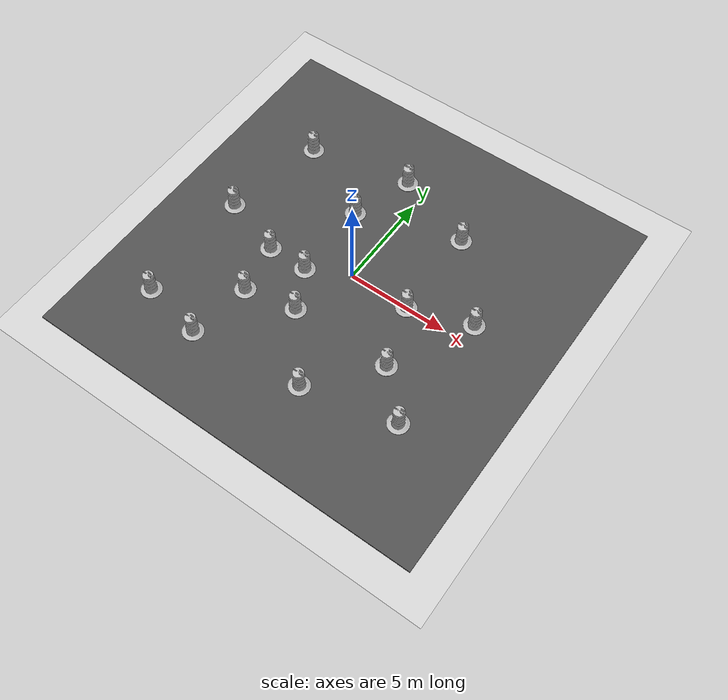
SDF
<sdf version="1.4">
 <world name="default">
  <light name="sun" type="directional">
   <pose>0 0 10 0 -0 0</pose>
   <diffuse>0.8 0.8 0.8 1</diffuse>
   <specular>0.2 0.2 0.2 1</specular>
   <attenuation>
    <range>1000</range>
    <constant>0.9</constant>
    <linear>0.01</linear>
    <quadratic>0.001</quadratic>
   </attenuation>
   <direction>-0.5 0.1 -0.9</direction>
  </light>
  <model name="ground_plane">
   <static>1</static>
   <link name="link">
    <collision name="collision">
     <geometry><plane><normal>0 0 1</normal><size>100 100</size></plane></geometry>
     <surface><friction><ode><mu>100</mu><mu2>50</mu2></ode></friction></surface>
    </collision>
    <visual name="visual">
     <cast_shadows>0</cast_shadows>
     <geometry><plane><normal>0 0 1</normal><size>100 100</size></plane></geometry>
     <material>
      <script><uri>file://media/materials/scripts/gazebo.material</uri><name>Gazebo/Grey</name></script>
     </material>
    </visual>
    <velocity_decay><linear>0</linear><angular>0</angular></velocity_decay>
   </link>
  </model>
  <physics type="ode">
   <max_step_size>0.001</max_step_size>
   <real_time_factor>1</real_time_factor>
   <real_time_update_rate>1000</real_time_update_rate>
   <gravity>0 0 -9.8</gravity>
  </physics>
  <scene><ambient>0.4 0.4 0.4 1</ambient><background>0.7 0.7 0.7 1</background><shadows>1</shadows></scene>
  <spherical_coordinates>
   <surface_model>EARTH_WGS84</surface_model>
   <latitude_deg>0</latitude_deg>
   <longitude_deg>0</longitude_deg>
   <elevation>0</elevation>
   <heading_deg>0</heading_deg>
  </spherical_coordinates>
  <model name="asphalt_plane">
   <static>1</static>
   <link name="link">
    <collision name="collision"><geometry><box><size>20 20 0.1</size></box></geometry></collision>
    <visual name="visual">
     <cast_shadows>0</cast_shadows>
     <geometry><box><size>20 20 0.1</size></box></geometry>
     <material>
      <script>
       <uri>model://asphalt_plane/materials/scripts</uri>
       <uri>model://asphalt_plane/materials/textures</uri>
       <name>vrc/asphalt</name>
      </script>
     </material>
    </visual>
    <velocity_decay><linear>0</linear><angular>0</angular></velocity_decay>
   </link>
  </model>
  <model name="Construction Barrel">
   <link name="link">
    <inertial>
     <pose>0 0 0.4 0 -0 0</pose>
     <mass>500</mass>
     <inertia><ixx>51.2096</ixx><iyy>51.2096</iyy><izz>25</izz><ixy>0</ixy><ixz>0</ixz><iyz>0</iyz></inertia>
    </inertial>
    <collision name="collision">
     <geometry><mesh><uri>model://construction_barrel/meshes/construction_barrel.dae</uri></mesh></geometry>
    </collision>
    <visual name="visual">
     <geometry><mesh><uri>model://construction_barrel/meshes/construction_barrel.dae</uri></mesh></geometry>
    </visual>
    <velocity_decay><linear>0</linear><angular>0</angular></velocity_decay>
   </link>
   <pose>-3.52449 -3.48844 0.049999 3e-06 -2.58494e-26 7.1e-05</pose>
   <static>0</static>
  </model>
  <model name="Construction Barrel_0">
   <link name="link">
    <inertial>
     <pose>0 0 0.4 0 -0 0</pose>
     <mass>500</mass>
     <inertia><ixx>51.2096</ixx><iyy>51.2096</iyy><izz>25</izz><ixy>0</ixy><ixz>0</ixz><iyz>0</iyz></inertia>
    </inertial>
    <collision name="collision">
     <geometry><mesh><uri>model://construction_barrel/meshes/construction_barrel.dae</uri></mesh></geometry>
    </collision>
    <visual name="visual">
     <geometry><mesh><uri>model://construction_barrel/meshes/construction_barrel.dae</uri></mesh></geometry>
    </visual>
    <velocity_decay><linear>0</linear><angular>0</angular></velocity_decay>
   </link>
   <pose>-3.9992 -0.999215 0.049999 -1e-06 -2e-06 6.6e-05</pose>
   <static>0</static>
  </model>
  <model name="Construction Barrel_1">
   <link name="link">
    <inertial>
     <pose>0 0 0.4 0 -0 0</pose>
     <mass>500</mass>
     <inertia><ixx>51.2096</ixx><iyy>51.2096</iyy><izz>25</izz><ixy>0</ixy><ixz>0</ixz><iyz>0</iyz></inertia>
    </inertial>
    <collision name="collision">
     <geometry><mesh><uri>model://construction_barrel/meshes/construction_barrel.dae</uri></mesh></geometry>
    </collision>
    <visual name="visual">
     <geometry><mesh><uri>model://construction_barrel/meshes/construction_barrel.dae</uri></mesh></geometry>
    </visual>
    <velocity_decay><linear>0</linear><angular>0</angular></velocity_decay>
   </link>
   <pose>-1.9992 3.00079 0.049999 4e-06 -5.16988e-26 5.9e-05</pose>
   <static>0</static>
  </model>
  <model name="Construction Barrel_2">
   <link name="link">
    <inertial>
     <pose>0 0 0.4 0 -0 0</pose>
     <mass>500</mass>
     <inertia><ixx>51.2096</ixx><iyy>51.2096</iyy><izz>25</izz><ixy>0</ixy><ixz>0</ixz><iyz>0</iyz></inertia>
    </inertial>
    <collision name="collision">
     <geometry><mesh><uri>model://construction_barrel/meshes/construction_barrel.dae</uri></mesh></geometry>
    </collision>
    <visual name="visual">
     <geometry><mesh><uri>model://construction_barrel/meshes/construction_barrel.dae</uri></mesh></geometry>
    </visual>
    <velocity_decay><linear>0</linear><angular>0</angular></velocity_decay>
   </link>
   <pose>-1.9992 -0.999216 0.049999 -1e-06 -3e-06 6.3e-05</pose>
   <static>0</static>
  </model>
  <model name="Construction Barrel_3">
   <link name="link">
    <inertial>
     <pose>0 0 0.4 0 -0 0</pose>
     <mass>500</mass>
     <inertia><ixx>51.2096</ixx><iyy>51.2096</iyy><izz>25</izz><ixy>0</ixy><ixz>0</ixz><iyz>0</iyz></inertia>
    </inertial>
    <collision name="collision">
     <geometry><mesh><uri>model://construction_barrel/meshes/construction_barrel.dae</uri></mesh></geometry>
    </collision>
    <visual name="visual">
     <geometry><mesh><uri>model://construction_barrel/meshes/construction_barrel.dae</uri></mesh></geometry>
    </visual>
    <velocity_decay><linear>0</linear><angular>0</angular></velocity_decay>
   </link>
   <pose>-0.999204 -2.99922 0.049999 4e-06 -0 5.5e-05</pose>
   <static>0</static>
  </model>
  <model name="Construction Barrel_4">
   <link name="link">
    <inertial>
     <pose>0 0 0.4 0 -0 0</pose>
     <mass>500</mass>
     <inertia><ixx>51.2096</ixx><iyy>51.2096</iyy><izz>25</izz><ixy>0</ixy><ixz>0</ixz><iyz>0</iyz></inertia>
    </inertial>
    <collision name="collision">
     <geometry><mesh><uri>model://construction_barrel/meshes/construction_barrel.dae</uri></mesh></geometry>
    </collision>
    <visual name="visual">
     <geometry><mesh><uri>model://construction_barrel/meshes/construction_barrel.dae</uri></mesh></geometry>
    </visual>
    <velocity_decay><linear>0</linear><angular>0</angular></velocity_decay>
   </link>
   <pose>6.00079 -4.99922 0.049999 -1e-06 -3e-06 5.1e-05</pose>
   <static>0</static>
  </model>
  <model name="Construction Barrel_5">
   <link name="link">
    <inertial>
     <pose>0 0 0.4 0 -0 0</pose>
     <mass>500</mass>
     <inertia><ixx>51.2096</ixx><iyy>51.2096</iyy><izz>25</izz><ixy>0</ixy><ixz>0</ixz><iyz>0</iyz></inertia>
    </inertial>
    <collision name="collision">
     <geometry><mesh><uri>model://construction_barrel/meshes/construction_barrel.dae</uri></mesh></geometry>
    </collision>
    <visual name="visual">
     <geometry><mesh><uri>model://construction_barrel/meshes/construction_barrel.dae</uri></mesh></geometry>
    </visual>
    <velocity_decay><linear>0</linear><angular>0</angular></velocity_decay>
   </link>
   <pose>3.00079 0.000779 0.049999 2e-06 -2.58494e-26 4.9e-05</pose>
   <static>0</static>
  </model>
  <model name="Construction Barrel_6">
   <link name="link">
    <inertial>
     <pose>0 0 0.4 0 -0 0</pose>
     <mass>500</mass>
     <inertia><ixx>51.2096</ixx><iyy>51.2096</iyy><izz>25</izz><ixy>0</ixy><ixz>0</ixz><iyz>0</iyz></inertia>
    </inertial>
    <collision name="collision">
     <geometry><mesh><uri>model://construction_barrel/meshes/construction_barrel.dae</uri></mesh></geometry>
    </collision>
    <visual name="visual">
     <geometry><mesh><uri>model://construction_barrel/meshes/construction_barrel.dae</uri></mesh></geometry>
    </visual>
    <velocity_decay><linear>0</linear><angular>0</angular></velocity_decay>
   </link>
   <pose>6.00079 1.00078 0.049999 -1e-06 -3e-06 4.6e-05</pose>
   <static>0</static>
  </model>
  <model name="Construction Barrel_7">
   <link name="link">
    <inertial>
     <pose>0 0 0.4 0 -0 0</pose>
     <mass>500</mass>
     <inertia><ixx>51.2096</ixx><iyy>51.2096</iyy><izz>25</izz><ixy>0</ixy><ixz>0</ixz><iyz>0</iyz></inertia>
    </inertial>
    <collision name="collision">
     <geometry><mesh><uri>model://construction_barrel/meshes/construction_barrel.dae</uri></mesh></geometry>
    </collision>
    <visual name="visual">
     <geometry><mesh><uri>model://construction_barrel/meshes/construction_barrel.dae</uri></mesh></geometry>
    </visual>
    <velocity_decay><linear>0</linear><angular>0</angular></velocity_decay>
   </link>
   <pose>3.00079 4.59213 0.049999 -1e-06 -2e-06 4.5e-05</pose>
   <static>0</static>
  </model>
  <model name="Construction Barrel_8">
   <link name="link">
    <inertial>
     <pose>0 0 0.4 0 -0 0</pose>
     <mass>500</mass>
     <inertia><ixx>51.2096</ixx><iyy>51.2096</iyy><izz>25</izz><ixy>0</ixy><ixz>0</ixz><iyz>0</iyz></inertia>
    </inertial>
    <collision name="collision">
     <geometry><mesh><uri>model://construction_barrel/meshes/construction_barrel.dae</uri></mesh></geometry>
    </collision>
    <visual name="visual">
     <geometry><mesh><uri>model://construction_barrel/meshes/construction_barrel.dae</uri></mesh></geometry>
    </visual>
    <velocity_decay><linear>0</linear><angular>0</angular></velocity_decay>
   </link>
   <pose>1.50889 -5.99923 0.049999 -1e-06 -3e-06 4.2e-05</pose>
   <static>0</static>
  </model>
  <model name="Construction Barrel_9">
   <link name="link">
    <inertial>
     <pose>0 0 0.4 0 -0 0</pose>
     <mass>500</mass>
     <inertia><ixx>51.2096</ixx><iyy>51.2096</iyy><izz>25</izz><ixy>0</ixy><ixz>0</ixz><iyz>0</iyz></inertia>
    </inertial>
    <collision name="collision">
     <geometry><mesh><uri>model://construction_barrel/meshes/construction_barrel.dae</uri></mesh></geometry>
    </collision>
    <visual name="visual">
     <geometry><mesh><uri>model://construction_barrel/meshes/construction_barrel.dae</uri></mesh></geometry>
    </visual>
    <velocity_decay><linear>0</linear><angular>0</angular></velocity_decay>
   </link>
   <pose>-3.99922 -6.59566 0.049999 4e-06 -0 3.7e-05</pose>
   <static>0</static>
  </model>
  <model name="Construction Barrel_10">
   <link name="link">
    <inertial>
     <pose>0 0 0.4 0 -0 0</pose>
     <mass>500</mass>
     <inertia><ixx>51.2096</ixx><iyy>51.2096</iyy><izz>25</izz><ixy>0</ixy><ixz>0</ixz><iyz>0</iyz></inertia>
    </inertial>
    <collision name="collision">
     <geometry><mesh><uri>model://construction_barrel/meshes/construction_barrel.dae</uri></mesh></geometry>
    </collision>
    <visual name="visual">
     <geometry><mesh><uri>model://construction_barrel/meshes/construction_barrel.dae</uri></mesh></geometry>
    </visual>
    <velocity_decay><linear>0</linear><angular>0</angular></velocity_decay>
   </link>
   <pose>-6.99922 0.000771 0.049999 3e-06 -0 3.5e-05</pose>
   <static>0</static>
  </model>
  <model name="Construction Barrel_11">
   <link name="link">
    <inertial>
     <pose>0 0 0.4 0 -0 0</pose>
     <mass>500</mass>
     <inertia><ixx>51.2096</ixx><iyy>51.2096</iyy><izz>25</izz><ixy>0</ixy><ixz>0</ixz><iyz>0</iyz></inertia>
    </inertial>
    <collision name="collision">
     <geometry><mesh><uri>model://construction_barrel/meshes/construction_barrel.dae</uri></mesh></geometry>
    </collision>
    <visual name="visual">
     <geometry><mesh><uri>model://construction_barrel/meshes/construction_barrel.dae</uri></mesh></geometry>
    </visual>
    <velocity_decay><linear>0</linear><angular>0</angular></velocity_decay>
   </link>
   <pose>-5.99922 5.00077 0.049999 4e-06 -1.29247e-26 2.9e-05</pose>
   <static>0</static>
  </model>
  <model name="Construction Barrel_12">
   <link name="link">
    <inertial>
     <pose>0 0 0.4 0 -0 0</pose>
     <mass>500</mass>
     <inertia><ixx>51.2096</ixx><iyy>51.2096</iyy><izz>25</izz><ixy>0</ixy><ixz>0</ixz><iyz>0</iyz></inertia>
    </inertial>
    <collision name="collision">
     <geometry><mesh><uri>model://construction_barrel/meshes/construction_barrel.dae</uri></mesh></geometry>
    </collision>
    <visual name="visual">
     <geometry><mesh><uri>model://construction_barrel/meshes/construction_barrel.dae</uri></mesh></geometry>
    </visual>
    <velocity_decay><linear>0</linear><angular>0</angular></velocity_decay>
   </link>
   <pose>-6.99922 -5.99923 0.05 2e-06 -6.46235e-27 2.7e-05</pose>
   <static>0</static>
  </model>
  <model name="Construction Barrel_13">
   <link name="link">
    <inertial>
     <pose>0 0 0.4 0 -0 0</pose>
     <mass>500</mass>
     <inertia><ixx>51.2096</ixx><iyy>51.2096</iyy><izz>25</izz><ixy>0</ixy><ixz>0</ixz><iyz>0</iyz></inertia>
    </inertial>
    <collision name="collision">
     <geometry><mesh><uri>model://construction_barrel/meshes/construction_barrel.dae</uri></mesh></geometry>
    </collision>
    <visual name="visual">
     <geometry><mesh><uri>model://construction_barrel/meshes/construction_barrel.dae</uri></mesh></geometry>
    </visual>
    <velocity_decay><linear>0</linear><angular>0</angular></velocity_decay>
   </link>
   <pose>4.00077 -2.99923 0.049999 -1e-06 -3e-06 2.6e-05</pose>
   <static>0</static>
  </model>
  <model name="Construction Barrel_14">
   <link name="link">
    <inertial>
     <pose>0 0 0.4 0 -0 0</pose>
     <mass>500</mass>
     <inertia><ixx>51.2096</ixx><iyy>51.2096</iyy><izz>25</izz><ixy>0</ixy><ixz>0</ixz><iyz>0</iyz></inertia>
    </inertial>
    <collision name="collision">
     <geometry><mesh><uri>model://construction_barrel/meshes/construction_barrel.dae</uri></mesh></geometry>
    </collision>
    <visual name="visual">
     <geometry><mesh><uri>model://construction_barrel/meshes/construction_barrel.dae</uri></mesh></geometry>
    </visual>
    <velocity_decay><linear>0</linear><angular>0</angular></velocity_decay>
   </link>
   <pose>-0.99923 6.00076 0.049999 3e-06 1.29247e-26 2.3e-05</pose>
   <static>0</static>
  </model>
 </world>
</sdf>
